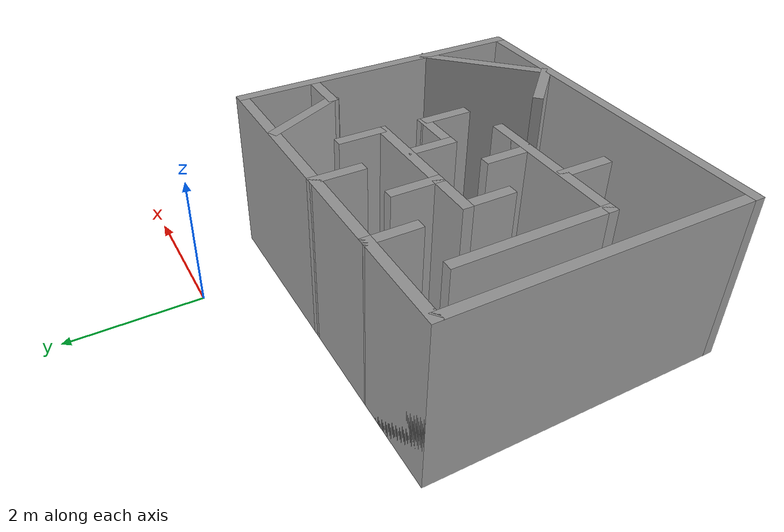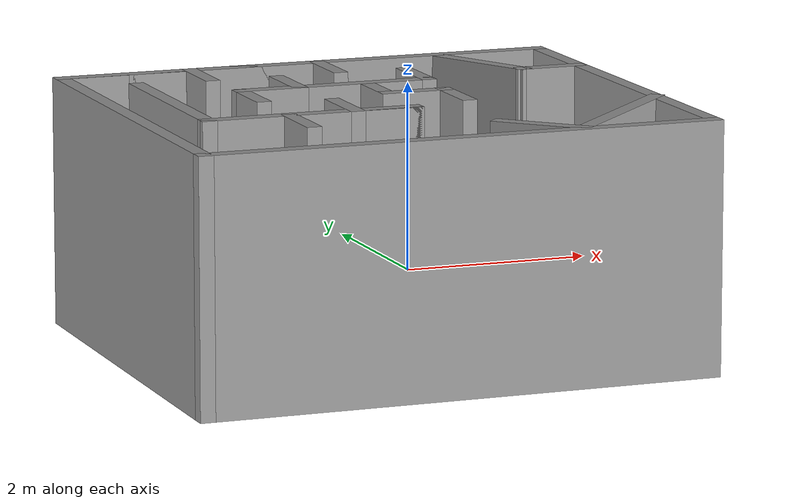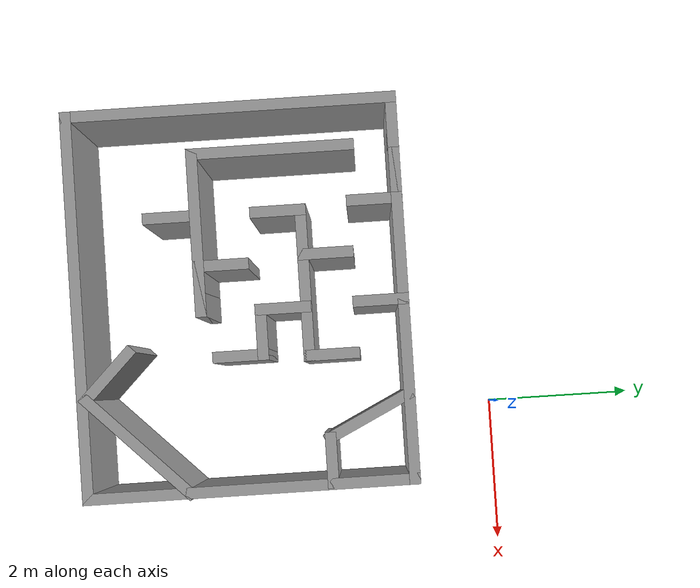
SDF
<?xml version='1.0'?>
<sdf version='1.7'>
  <model name='level4'>
    <pose>-1.57946 -2.81442 0 0 -0 0</pose>
    <link name='Wall_100'>
      <collision name='Wall_100_Collision'>
        <geometry>
          <box>
            <size>0.75 0.15 2.5</size>
          </box>
        </geometry>
        <pose>0 0 1.25 0 -0 0</pose>
      </collision>
      <visual name='Wall_100_Visual'>
        <pose>0 0 1.25 0 -0 0</pose>
        <geometry>
          <box>
            <size>0.75 0.15 2.5</size>
          </box>
        </geometry>
        <material>
          <script>
            <uri>file://media/materials/scripts/gazebo.material</uri>
            <name>Gazebo/Grey</name>
          </script>
          <ambient>1 1 1 1</ambient>
        </material>
        <meta>
          <layer>0</layer>
        </meta>
      </visual>
      <pose>-0.163564 -1.08942 0 0 -0 3.14159</pose>
    </link>
    <link name='Wall_101'>
      <collision name='Wall_101_Collision'>
        <geometry>
          <box>
            <size>0.75 0.15 2.5</size>
          </box>
        </geometry>
        <pose>0 0 1.25 0 -0 0</pose>
      </collision>
      <visual name='Wall_101_Visual'>
        <pose>0 0 1.25 0 -0 0</pose>
        <geometry>
          <box>
            <size>0.75 0.15 2.5</size>
          </box>
        </geometry>
        <material>
          <script>
            <uri>file://media/materials/scripts/gazebo.material</uri>
            <name>Gazebo/Grey</name>
          </script>
          <ambient>1 1 1 1</ambient>
        </material>
        <meta>
          <layer>0</layer>
        </meta>
      </visual>
      <pose>-0.463564 -0.789422 0 0 -0 1.5708</pose>
    </link>
    <link name='Wall_103'>
      <collision name='Wall_103_Collision'>
        <geometry>
          <box>
            <size>1.5 0.15 2.5</size>
          </box>
        </geometry>
        <pose>0 0 1.25 0 -0 0</pose>
      </collision>
      <visual name='Wall_103_Visual'>
        <pose>0 0 1.25 0 -0 0</pose>
        <geometry>
          <box>
            <size>1.5 0.15 2.5</size>
          </box>
        </geometry>
        <material>
          <script>
            <uri>file://media/materials/scripts/gazebo.material</uri>
            <name>Gazebo/Grey</name>
          </script>
          <ambient>1 1 1 1</ambient>
        </material>
        <meta>
          <layer>0</layer>
        </meta>
      </visual>
      <pose>-0.538564 1.61058 0 0 -0 0</pose>
    </link>
    <link name='Wall_104'>
      <collision name='Wall_104_Collision'>
        <geometry>
          <box>
            <size>0.75 0.15 2.5</size>
          </box>
        </geometry>
        <pose>0 0 1.25 0 -0 0</pose>
      </collision>
      <visual name='Wall_104_Visual'>
        <pose>0 0 1.25 0 -0 0</pose>
        <geometry>
          <box>
            <size>0.75 0.15 2.5</size>
          </box>
        </geometry>
        <material>
          <script>
            <uri>file://media/materials/scripts/gazebo.material</uri>
            <name>Gazebo/Grey</name>
          </script>
          <ambient>1 1 1 1</ambient>
        </material>
        <meta>
          <layer>0</layer>
        </meta>
      </visual>
      <pose>0.136436 1.31058 0 0 -0 -1.5708</pose>
    </link>
    <link name='Wall_106'>
      <collision name='Wall_106_Collision'>
        <geometry>
          <box>
            <size>0.75 0.15 2.5</size>
          </box>
        </geometry>
        <pose>0 0 1.25 0 -0 0</pose>
      </collision>
      <visual name='Wall_106_Visual'>
        <pose>0 0 1.25 0 -0 0</pose>
        <geometry>
          <box>
            <size>0.75 0.15 2.5</size>
          </box>
        </geometry>
        <material>
          <script>
            <uri>file://media/materials/scripts/gazebo.material</uri>
            <name>Gazebo/Grey</name>
          </script>
          <ambient>1 1 1 1</ambient>
        </material>
        <meta>
          <layer>0</layer>
        </meta>
      </visual>
      <pose>-0.535083 0.614531 0 0 -0 -1.5708</pose>
    </link>
    <link name='Wall_107'>
      <collision name='Wall_107_Collision'>
        <geometry>
          <box>
            <size>0.75 0.15 2.5</size>
          </box>
        </geometry>
        <pose>0 0 1.25 0 -0 0</pose>
      </collision>
      <visual name='Wall_107_Visual'>
        <pose>0 0 1.25 0 -0 0</pose>
        <geometry>
          <box>
            <size>0.75 0.15 2.5</size>
          </box>
        </geometry>
        <material>
          <script>
            <uri>file://media/materials/scripts/gazebo.material</uri>
            <name>Gazebo/Grey</name>
          </script>
          <ambient>1 1 1 1</ambient>
        </material>
        <meta>
          <layer>0</layer>
        </meta>
      </visual>
      <pose>-0.835083 0.314531 0 0 -0 3.14159</pose>
    </link>
    <link name='Wall_108'>
      <collision name='Wall_108_Collision'>
        <geometry>
          <box>
            <size>0.75 0.15 2.5</size>
          </box>
        </geometry>
        <pose>0 0 1.25 0 -0 0</pose>
      </collision>
      <visual name='Wall_108_Visual'>
        <pose>0 0 1.25 0 -0 0</pose>
        <geometry>
          <box>
            <size>0.75 0.15 2.5</size>
          </box>
        </geometry>
        <material>
          <script>
            <uri>file://media/materials/scripts/gazebo.material</uri>
            <name>Gazebo/Grey</name>
          </script>
          <ambient>1 1 1 1</ambient>
        </material>
        <meta>
          <layer>0</layer>
        </meta>
      </visual>
      <pose>-1.13508 0.014531 0 0 -0 -1.5708</pose>
    </link>
    <link name='Wall_110'>
      <collision name='Wall_110_Collision'>
        <geometry>
          <box>
            <size>1.5 0.15 2.5</size>
          </box>
        </geometry>
        <pose>0 0 1.25 0 -0 0</pose>
      </collision>
      <visual name='Wall_110_Visual'>
        <pose>0 0 1.25 0 -0 0</pose>
        <geometry>
          <box>
            <size>1.5 0.15 2.5</size>
          </box>
        </geometry>
        <material>
          <script>
            <uri>file://media/materials/scripts/gazebo.material</uri>
            <name>Gazebo/Grey</name>
          </script>
          <ambient>1 1 1 1</ambient>
        </material>
        <meta>
          <layer>0</layer>
        </meta>
      </visual>
      <pose>0.139917 0.314531 0 0 -0 0</pose>
    </link>
    <link name='Wall_111'>
      <collision name='Wall_111_Collision'>
        <geometry>
          <box>
            <size>0.75 0.15 2.5</size>
          </box>
        </geometry>
        <pose>0 0 1.25 0 -0 0</pose>
      </collision>
      <visual name='Wall_111_Visual'>
        <pose>0 0 1.25 0 -0 0</pose>
        <geometry>
          <box>
            <size>0.75 0.15 2.5</size>
          </box>
        </geometry>
        <material>
          <script>
            <uri>file://media/materials/scripts/gazebo.material</uri>
            <name>Gazebo/Grey</name>
          </script>
          <ambient>1 1 1 1</ambient>
        </material>
        <meta>
          <layer>0</layer>
        </meta>
      </visual>
      <pose>0.814917 0.614531 0 0 -0 1.5708</pose>
    </link>
    <link name='Wall_113'>
      <collision name='Wall_113_Collision'>
        <geometry>
          <box>
            <size>0.75 0.15 2.5</size>
          </box>
        </geometry>
        <pose>0 0 1.25 0 -0 0</pose>
      </collision>
      <visual name='Wall_113_Visual'>
        <pose>0 0 1.25 0 -0 0</pose>
        <geometry>
          <box>
            <size>0.75 0.15 2.5</size>
          </box>
        </geometry>
        <material>
          <script>
            <uri>file://media/materials/scripts/gazebo.material</uri>
            <name>Gazebo/Grey</name>
          </script>
          <ambient>1 1 1 1</ambient>
        </material>
        <meta>
          <layer>0</layer>
        </meta>
      </visual>
      <pose>0.160965 0.003004 0 0 -0 -1.5708</pose>
    </link>
    <link name='Wall_114'>
      <collision name='Wall_114_Collision'>
        <geometry>
          <box>
            <size>0.75 0.15 2.5</size>
          </box>
        </geometry>
        <pose>0 0 1.25 0 -0 0</pose>
      </collision>
      <visual name='Wall_114_Visual'>
        <pose>0 0 1.25 0 -0 0</pose>
        <geometry>
          <box>
            <size>0.75 0.15 2.5</size>
          </box>
        </geometry>
        <material>
          <script>
            <uri>file://media/materials/scripts/gazebo.material</uri>
            <name>Gazebo/Grey</name>
          </script>
          <ambient>1 1 1 1</ambient>
        </material>
        <meta>
          <layer>0</layer>
        </meta>
      </visual>
      <pose>0.460965 -0.296996 0 0 -0 0</pose>
    </link>
    <link name='Wall_115'>
      <collision name='Wall_115_Collision'>
        <geometry>
          <box>
            <size>0.75 0.15 2.5</size>
          </box>
        </geometry>
        <pose>0 0 1.25 0 -0 0</pose>
      </collision>
      <visual name='Wall_115_Visual'>
        <pose>0 0 1.25 0 -0 0</pose>
        <geometry>
          <box>
            <size>0.75 0.15 2.5</size>
          </box>
        </geometry>
        <material>
          <script>
            <uri>file://media/materials/scripts/gazebo.material</uri>
            <name>Gazebo/Grey</name>
          </script>
          <ambient>1 1 1 1</ambient>
        </material>
        <meta>
          <layer>0</layer>
        </meta>
      </visual>
      <pose>0.760965 -0.596996 0 0 -0 -1.5708</pose>
    </link>
    <link name='Wall_117'>
      <collision name='Wall_117_Collision'>
        <geometry>
          <box>
            <size>0.75 0.15 2.5</size>
          </box>
        </geometry>
        <pose>0 0 1.25 0 -0 0</pose>
      </collision>
      <visual name='Wall_117_Visual'>
        <pose>0 0 1.25 0 -0 0</pose>
        <geometry>
          <box>
            <size>0.75 0.15 2.5</size>
          </box>
        </geometry>
        <material>
          <script>
            <uri>file://media/materials/scripts/gazebo.material</uri>
            <name>Gazebo/Grey</name>
          </script>
          <ambient>1 1 1 1</ambient>
        </material>
        <meta>
          <layer>0</layer>
        </meta>
      </visual>
      <pose>-1.14164 -1.41892 0 0 -0 -1.5708</pose>
    </link>
    <link name='Wall_119'>
      <collision name='Wall_119_Collision'>
        <geometry>
          <box>
            <size>0.75 0.15 2.5</size>
          </box>
        </geometry>
        <pose>0 0 1.25 0 -0 0</pose>
      </collision>
      <visual name='Wall_119_Visual'>
        <pose>0 0 1.25 0 -0 0</pose>
        <geometry>
          <box>
            <size>0.75 0.15 2.5</size>
          </box>
        </geometry>
        <material>
          <script>
            <uri>file://media/materials/scripts/gazebo.material</uri>
            <name>Gazebo/Grey</name>
          </script>
          <ambient>1 1 1 1</ambient>
        </material>
        <meta>
          <layer>0</layer>
        </meta>
      </visual>
      <pose>2.22255 0.526733 0 0 -0 3.14159</pose>
    </link>
    <link name='Wall_121'>
      <collision name='Wall_121_Collision'>
        <geometry>
          <box>
            <size>2 0.15 2.5</size>
          </box>
        </geometry>
        <pose>0 0 1.25 0 -0 0</pose>
      </collision>
      <visual name='Wall_121_Visual'>
        <pose>0 0 1.25 0 -0 0</pose>
        <geometry>
          <box>
            <size>2 0.15 2.5</size>
          </box>
        </geometry>
        <material>
          <script>
            <uri>file://media/materials/scripts/gazebo.material</uri>
            <name>Gazebo/Grey</name>
          </script>
          <ambient>1 1 1 1</ambient>
        </material>
        <meta>
          <layer>0</layer>
        </meta>
      </visual>
      <pose>1.87842 -2.0365 0 0 -0 -2.35619</pose>
    </link>
    <link name='Wall_122'>
      <collision name='Wall_122_Collision'>
        <geometry>
          <box>
            <size>1 0.15 2.5</size>
          </box>
        </geometry>
        <pose>0 0 1.25 0 -0 0</pose>
      </collision>
      <visual name='Wall_122_Visual'>
        <pose>0 0 1.25 0 -0 0</pose>
        <geometry>
          <box>
            <size>1 0.15 2.5</size>
          </box>
        </geometry>
        <material>
          <script>
            <uri>file://media/materials/scripts/gazebo.material</uri>
            <name>Gazebo/Grey</name>
          </script>
          <ambient>1 1 1 1</ambient>
        </material>
        <meta>
          <layer>0</layer>
        </meta>
      </visual>
      <pose>0.92383 -2.39005 0 0 -0 2.35619</pose>
    </link>
    <link name='Wall_124'>
      <collision name='Wall_124_Collision'>
        <geometry>
          <box>
            <size>1.31588 0.15 2.5</size>
          </box>
        </geometry>
        <pose>0 0 1.25 0 -0 0</pose>
      </collision>
      <visual name='Wall_124_Visual'>
        <pose>0 0 1.25 0 -0 0</pose>
        <geometry>
          <box>
            <size>1.31588 0.15 2.5</size>
          </box>
        </geometry>
        <material>
          <script>
            <uri>file://media/materials/scripts/gazebo.material</uri>
            <name>Gazebo/Grey</name>
          </script>
          <ambient>1 1 1 1</ambient>
        </material>
        <meta>
          <layer>0</layer>
        </meta>
      </visual>
      <pose>1.6682 1.05126 0 0 -0 -1.11928</pose>
    </link>
    <link name='Wall_86'>
      <collision name='Wall_86_Collision'>
        <geometry>
          <box>
            <size>5.25 0.15 2.5</size>
          </box>
        </geometry>
        <pose>0 0 1.25 0 -0 0</pose>
      </collision>
      <visual name='Wall_86_Visual'>
        <pose>0 0 1.25 0 -0 0</pose>
        <geometry>
          <box>
            <size>5.25 0.15 2.5</size>
          </box>
        </geometry>
        <material>
          <script>
            <uri>file://media/materials/scripts/gazebo.material</uri>
            <name>Gazebo/Grey</name>
          </script>
          <ambient>1 1 1 1</ambient>
        </material>
        <meta>
          <layer>0</layer>
        </meta>
      </visual>
      <pose>-0.013564 1.61058 0 0 -0 0</pose>
    </link>
    <link name='Wall_87'>
      <collision name='Wall_87_Collision'>
        <geometry>
          <box>
            <size>4.5 0.15 2.5</size>
          </box>
        </geometry>
        <pose>0 0 1.25 0 -0 0</pose>
      </collision>
      <visual name='Wall_87_Visual'>
        <pose>0 0 1.25 0 -0 0</pose>
        <geometry>
          <box>
            <size>4.5 0.15 2.5</size>
          </box>
        </geometry>
        <material>
          <script>
            <uri>file://media/materials/scripts/gazebo.material</uri>
            <name>Gazebo/Grey</name>
          </script>
          <ambient>1 1 1 1</ambient>
        </material>
        <meta>
          <layer>0</layer>
        </meta>
      </visual>
      <pose>2.53644 -0.564421 0 0 -0 -1.5708</pose>
    </link>
    <link name='Wall_88'>
      <collision name='Wall_88_Collision'>
        <geometry>
          <box>
            <size>5.25 0.15 2.5</size>
          </box>
        </geometry>
        <pose>0 0 1.25 0 -0 0</pose>
      </collision>
      <visual name='Wall_88_Visual'>
        <pose>0 0 1.25 0 -0 0</pose>
        <geometry>
          <box>
            <size>5.25 0.15 2.5</size>
          </box>
        </geometry>
        <material>
          <script>
            <uri>file://media/materials/scripts/gazebo.material</uri>
            <name>Gazebo/Grey</name>
          </script>
          <ambient>1 1 1 1</ambient>
        </material>
        <meta>
          <layer>0</layer>
        </meta>
      </visual>
      <pose>-0.013564 -2.73942 0 0 -0 3.14159</pose>
    </link>
    <link name='Wall_89'>
      <collision name='Wall_89_Collision'>
        <geometry>
          <box>
            <size>4.5 0.15 2.5</size>
          </box>
        </geometry>
        <pose>0 0 1.25 0 -0 0</pose>
      </collision>
      <visual name='Wall_89_Visual'>
        <pose>0 0 1.25 0 -0 0</pose>
        <geometry>
          <box>
            <size>4.5 0.15 2.5</size>
          </box>
        </geometry>
        <material>
          <script>
            <uri>file://media/materials/scripts/gazebo.material</uri>
            <name>Gazebo/Grey</name>
          </script>
          <ambient>1 1 1 1</ambient>
        </material>
        <meta>
          <layer>0</layer>
        </meta>
      </visual>
      <pose>-2.56356 -0.564421 0 0 -0 1.5708</pose>
    </link>
    <link name='Wall_91'>
      <collision name='Wall_91_Collision'>
        <geometry>
          <box>
            <size>1.5 0.15 2.5</size>
          </box>
        </geometry>
        <pose>0 0 1.25 0 -0 0</pose>
      </collision>
      <visual name='Wall_91_Visual'>
        <pose>0 0 1.25 0 -0 0</pose>
        <geometry>
          <box>
            <size>1.5 0.15 2.5</size>
          </box>
        </geometry>
        <material>
          <script>
            <uri>file://media/materials/scripts/gazebo.material</uri>
            <name>Gazebo/Grey</name>
          </script>
          <ambient>1 1 1 1</ambient>
        </material>
        <meta>
          <layer>0</layer>
        </meta>
      </visual>
      <pose>-1.88856 1.61058 0 0 -0 0</pose>
    </link>
    <link name='Wall_92'>
      <collision name='Wall_92_Collision'>
        <geometry>
          <box>
            <size>0.75 0.15 2.5</size>
          </box>
        </geometry>
        <pose>0 0 1.25 0 -0 0</pose>
      </collision>
      <visual name='Wall_92_Visual'>
        <pose>0 0 1.25 0 -0 0</pose>
        <geometry>
          <box>
            <size>0.75 0.15 2.5</size>
          </box>
        </geometry>
        <material>
          <script>
            <uri>file://media/materials/scripts/gazebo.material</uri>
            <name>Gazebo/Grey</name>
          </script>
          <ambient>1 1 1 1</ambient>
        </material>
        <meta>
          <layer>0</layer>
        </meta>
      </visual>
      <pose>-1.21356 1.31058 0 0 -0 -1.5708</pose>
    </link>
    <link name='Wall_94'>
      <collision name='Wall_94_Collision'>
        <geometry>
          <box>
            <size>0.75 0.15 2.5</size>
          </box>
        </geometry>
        <pose>0 0 1.25 0 -0 0</pose>
      </collision>
      <visual name='Wall_94_Visual'>
        <pose>0 0 1.25 0 -0 0</pose>
        <geometry>
          <box>
            <size>0.75 0.15 2.5</size>
          </box>
        </geometry>
        <material>
          <script>
            <uri>file://media/materials/scripts/gazebo.material</uri>
            <name>Gazebo/Grey</name>
          </script>
          <ambient>1 1 1 1</ambient>
        </material>
        <meta>
          <layer>0</layer>
        </meta>
      </visual>
      <pose>-2.26356 1.61058 0 0 -0 0</pose>
    </link>
    <link name='Wall_96'>
      <collision name='Wall_96_Collision'>
        <geometry>
          <box>
            <size>2.25 0.15 2.5</size>
          </box>
        </geometry>
        <pose>0 0 1.25 0 -0 0</pose>
      </collision>
      <visual name='Wall_96_Visual'>
        <pose>0 0 1.25 0 -0 0</pose>
        <geometry>
          <box>
            <size>2.25 0.15 2.5</size>
          </box>
        </geometry>
        <material>
          <script>
            <uri>file://media/materials/scripts/gazebo.material</uri>
            <name>Gazebo/Grey</name>
          </script>
          <ambient>1 1 1 1</ambient>
        </material>
        <meta>
          <layer>0</layer>
        </meta>
      </visual>
      <pose>-1.96356 -0.039422 0 0 -0 -1.5708</pose>
    </link>
    <link name='Wall_98'>
      <collision name='Wall_98_Collision'>
        <geometry>
          <box>
            <size>2.25 0.15 2.5</size>
          </box>
        </geometry>
        <pose>0 0 1.25 0 -0 0</pose>
      </collision>
      <visual name='Wall_98_Visual'>
        <pose>0 0 1.25 0 -0 0</pose>
        <geometry>
          <box>
            <size>2.25 0.15 2.5</size>
          </box>
        </geometry>
        <material>
          <script>
            <uri>file://media/materials/scripts/gazebo.material</uri>
            <name>Gazebo/Grey</name>
          </script>
          <ambient>1 1 1 1</ambient>
        </material>
        <meta>
          <layer>0</layer>
        </meta>
      </visual>
      <pose>-0.913564 -1.08942 0 0 -0 0</pose>
    </link>
    <static>1</static>
  </model>
</sdf>
